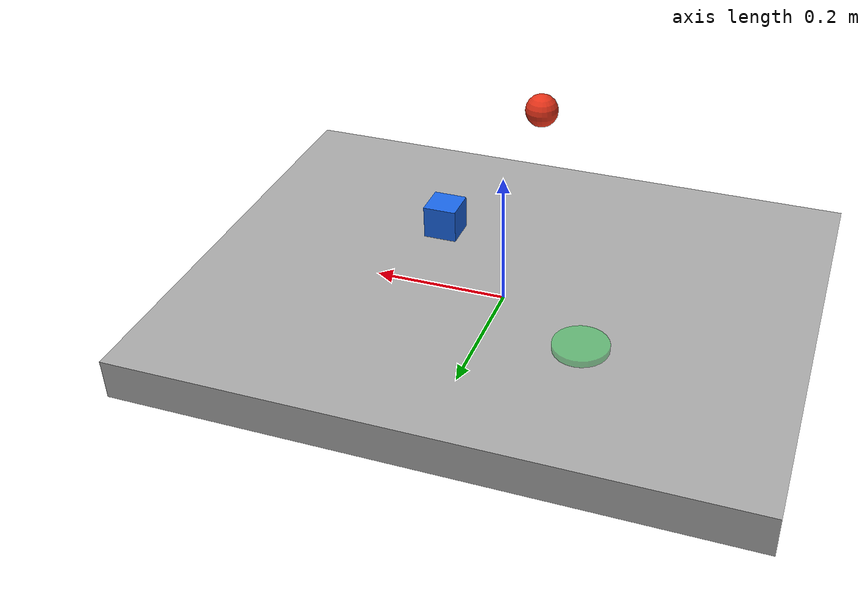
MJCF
<mujoco model="simple_pick_place">
  <option timestep="0.02" gravity="0 0 -9.81"/>
  <visual><global offwidth="448" offheight="448"/></visual>

  <worldbody>
    <light pos="0 0 2.5"/>
    <camera name="front" pos="0.8 -1.0 0.7" xyaxes="1 0 0 0 0.45 0.9"/>

    <geom name="table" type="box" pos="0 0 0" size="0.45 0.35 0.03" rgba="0.65 0.65 0.65 1"/>

    <body name="cube" pos="0.12 -0.08 0.07">
      <joint name="cube_free" type="free"/>
      <geom type="box" size="0.025 0.025 0.025" mass="0.05" rgba="0.1 0.4 0.9 1"/>
    </body>

    <body name="goal" pos="-0.15 0.12 0.035">
      <geom type="cylinder" size="0.04 0.005" rgba="0.1 0.8 0.25 0.45" contype="0" conaffinity="0"/>
    </body>

    <body name="eef" pos="0 -0.18 0.22">
      <geom type="sphere" size="0.025" rgba="0.9 0.2 0.1 1"/>
    </body>
  </worldbody>
</mujoco>
